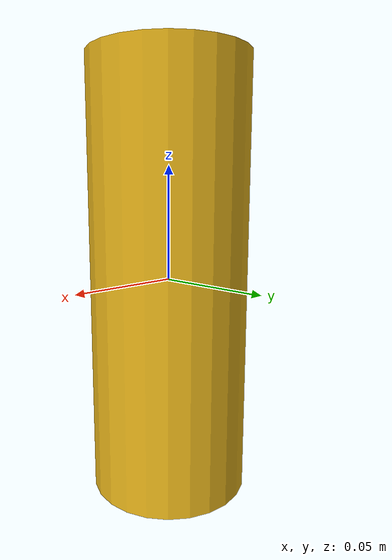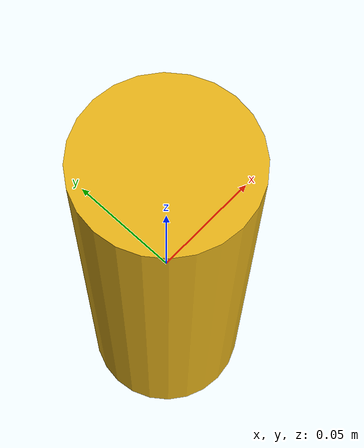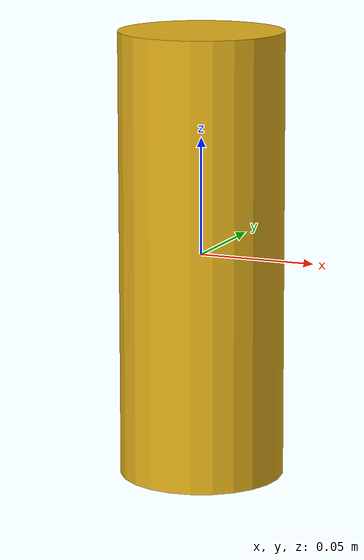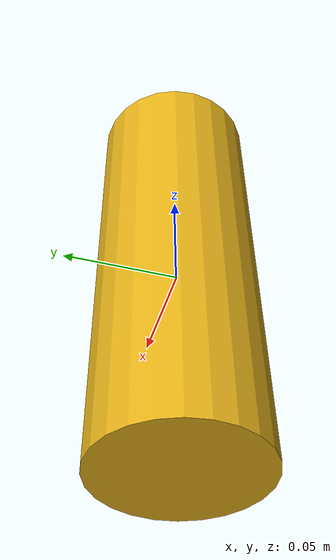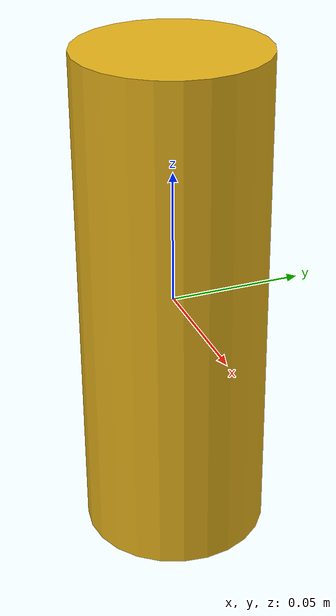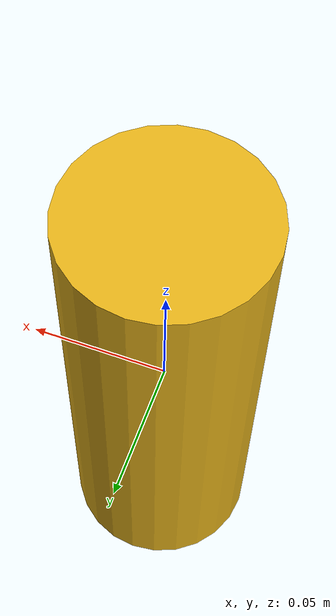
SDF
<?xml version="1.0" ?>
<sdf version="1.6">
  <model name="mustard_bottle">
    <static>false</static>
    <link name="link">

      <inertial>
        <mass>0.603</mass>
        <inertia>
          <ixx>0.00158</ixx>
          <ixy>0</ixy>
          <ixz>0</ixz>
          <iyy>0.00158</iyy>
          <iyz>0</iyz>
          <izz>0.00037</izz>
        </inertia>
      </inertial>

      <collision name="collision">
        <geometry>
          <cylinder>
            <radius>0.035</radius>
            <length>0.19</length>
          </cylinder>
        </geometry>
        <surface>
          <friction>
            <ode>
              <mu>0.8</mu>
              <mu2>0.8</mu2>
            </ode>
          </friction>
        </surface>
      </collision>

      <visual name="visual">
        <geometry>
          <cylinder>
            <radius>0.035</radius>
            <length>0.19</length>
          </cylinder>
        </geometry>
        <material>
          <ambient>0.9 0.7 0.1 1</ambient>
          <diffuse>0.9 0.7 0.1 1</diffuse>
        </material>
      </visual>

    </link>
  </model>
</sdf>
